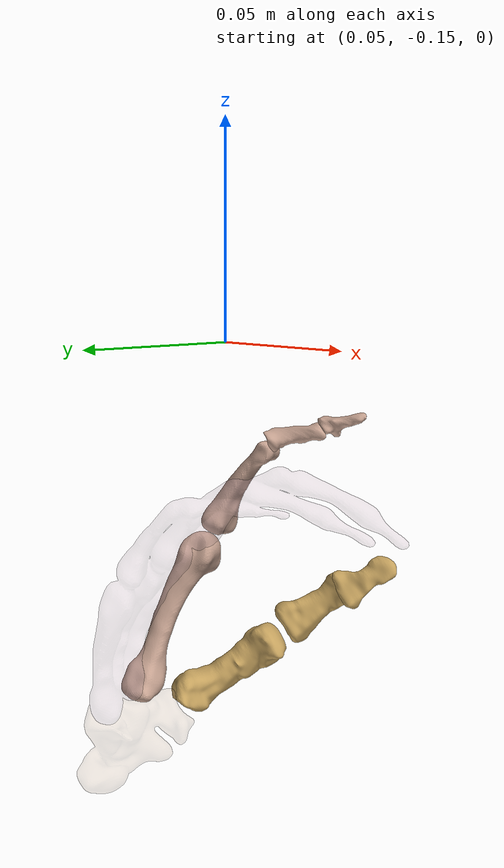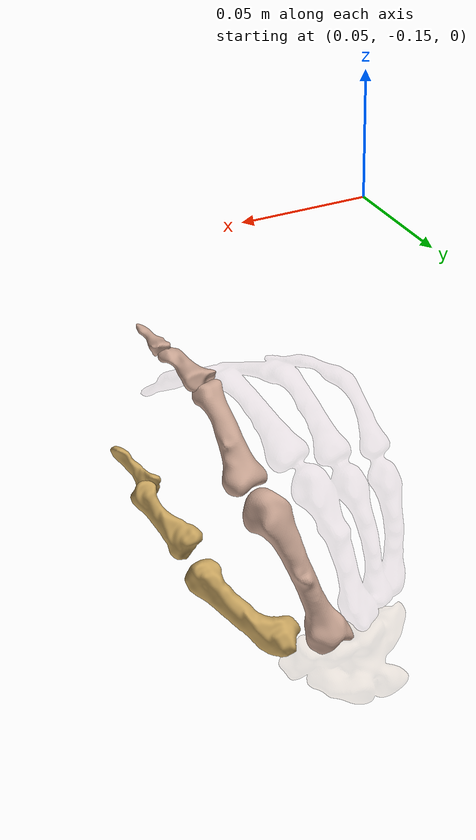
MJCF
<mujoco model="hand model">
    <visual>
        <headlight diffuse="0.6 0.6 0.6" ambient="0.3 0.3 0.3" specular="0 0 0" />
        <rgba haze="0.15 0.25 0.35 1" />
        <map znear="0.01" />
        <global offwidth="1024" offheight="1024" />
    </visual>
    <asset>
        <texture type="skybox" builtin="gradient" rgb1="1 1 1" rgb2="1 1 1" width="512" height="3072" />
        <texture type="2d" name="groundplane" builtin="checker" mark="edge" rgb1="0.2 0.3 0.4" rgb2="0.1 0.2 0.3" markrgb="0.8 0.8 0.8" width="300" height="300" />
        <material name="groundplane" texture="groundplane" texuniform="true" texrepeat="10 10" reflectance="0.3" />
        <material name="bone" reflectance="1" shininess="0" specular="0" rgba="0.68 0.64 0.57 1" />
    </asset>
    <default>
        <default class="zf">
            <geom type="mesh" contype="3" conaffinity="2" group="0" friction="0.7" solref="0.015 1" solimp="0.95 0.99 0.003" rgba="0.78 0.64 0.57 0.9" />
        </default>
        <default class="dau">
            <geom type="mesh" contype="3" conaffinity="2" group="0" friction="0.7" solref="0.015 1" solimp="0.95 0.99 0.003" rgba="0.78 0.64 0.37 0.9" />
        </default>
        <default class="base">
            <geom type="mesh" contype="3" conaffinity="2" group="0" friction="0.7" solref="0.015 1" solimp="0.95 0.99 0.003" rgba="0.74 0.60 0.47 0.1" />
        </default>
        <default class="other">
            <geom type="mesh" contype="3" conaffinity="2" group="0" friction="0.7" solref="0.015 1" solimp="0.95 0.99 0.003" rgba="0.74 0.60 0.67 0.1" />
        </default>
        <default class="visual">
            <geom type="mesh" contype="0" conaffinity="0" group="2" material="bone" rgba="0.68 0.64 0.57 1.0" />
        </default>
        <default class="tracker">
            <geom type="mesh" contype="0" conaffinity="0" group="2" rgba="0.2 0.2 1 0.2" />
        </default>
    </default>

    <compiler angle="radian" meshdir="../../assets/meshes" texturedir="assets" />
    <option integrator="RK4" />

    <statistic center="-0.4 -0.4 0.2" extent="1.2" />

    <asset>
        <mesh file="Segmentation_ZF_DIP.stl" name="ZF-DIP" scale="0.001 0.001 0.001" />
        <mesh file="Segmentation_ZF_PIP.stl" name="ZF-PIP1" scale="0.001 0.001 0.001" />
        <mesh file="zf_mid2.stl" name="ZF-PIP2" scale="0.001 0.001 0.001" />
        <mesh file="zf_mcp.stl" name="ZF-MCP" scale="0.001 0.001 0.001" />
        <mesh file="Segmentation_DAU_Osmetacarpale_1.stl" name="DAU-MCP" scale="0.001 0.001 0.001" />
        <mesh file="Segmentation_DAU_Phalax_proximalis.stl" name="DAU-PIP" scale="0.001 0.001 0.001" />
        <mesh file="Segmentation_DAU_DIP.stl" name="DAU-DIP" scale="0.001 0.001 0.001" />
        <mesh file="backhand.stl" name="BASE" scale="0.001 0.001 0.001" />
        <mesh file="rest.stl" name="OTHER" scale="0.001 0.001 0.001" />
    </asset>

    <worldbody>

        <light pos="0 0 1.5" dir="0 0 -1" directional="true" />

        <body name="ZF_MCP" pos="0.1776774 -0.007402596 0.16383637" quat="0.94908375 0.26175642 0.15019616 -0.096228346">

            <geom class="zf" mesh="ZF-MCP" type="mesh" />
            <geom class="base" mesh="BASE" type="mesh" />
            <geom class="other" mesh="OTHER" type="mesh" />

            <body name="DAU_MCP" pos="0.0003336841 0.0020733923 0.0021159737" quat="0.99705034 -0.0019221723 0.0048085903 -0.0048973868">
                <geom class="dau" mesh="DAU-MCP" type="mesh" />

                <joint armature="0.001" axis="0.2742059 0.7937635 -0.5429093" limited="true" name="ZF_MCP_to_DAU_CMC" pos="0.30018988 -0.10676851 -0.3061455" range="-1 1" type="hinge" />
                <joint armature="0.001" axis="0.6546 -0.6559804 -0.37575072" limited="true" name="DAU_CMC_to_DAU_MCP" pos="0.09922584 -0.3020816 -0.19789205" range="-0.2 1" type="hinge" />

                <body name="DAU_PIP" pos="0.006258016 0.0052959076 -0.00051674433" quat="0.99935913 -0.00891185 0.0006945565 -0.017817944">
                    <geom class="dau" mesh="DAU-PIP" type="mesh" />

                    <joint armature="0.001" axis="0.9999738 0.0024311296 0.006819374" limited="true" name="DAU_MCP_to_DAU_PIP" pos="0.015297772 0.00092049915 -0.002962291" range="-0.2 1" type="hinge" />

                    <body name="DAU_DIP" pos="0.017012665 0.0038345633 -0.004492165" quat="0.9958929 -0.0010636775 0.01020363 -0.040629536">
                        <geom class="dau" mesh="DAU-DIP" type="mesh" />

                        <joint armature="0.001" axis="0.9999538 -0.008915531 0.0035955422" limited="true" name="DAU_PIP_to_DAU_DIP" pos="0.020871907 -0.0027645559 0.00020505536" range="-0.2 1" type="hinge" />
                        <body name="DAU_TIP" pos="-0.0022919488 0.0021974177 -0.001919363" quat="0.9988924 -0.0027410362 -0.0015700125 -0.0046329987" />
                    </body>
                </body>
            </body>

            <body name="ZF_PIP2" pos="-0.054679856 0.04752336 -0.119985886" quat="0.95702666 -0.22162813 -0.19403175 0.032083143">
                <geom class="zf" mesh="ZF-PIP2" type="mesh" />

                <joint armature="0.001" axis="0.99999326 -0.00015349069 0.003675286" limited="true" name="ZF_MCP_to_ZF_PIP2" pos="-0.0066043953 0.0007813611 -0.0005422604" range="-0.4 1" type="hinge" />

                <body name="ZF_PIP1" pos="0.0038876198 -0.02574792 0.039141763" quat="0.9988716 0.09147741 0.0335273 0.018810697">
                    <geom class="zf" mesh="ZF-PIP1" type="mesh" />

                    <joint armature="0.001" axis="0.9999996 0.000444838 0.00082077173" limited="true" name="ZF_PIP2_to_ZF_PIP1" pos="0.032792125 0.0028194613 -0.0071567814" range="-0.4 1" type="hinge" />

                    <body name="ZF_DIP" pos="-0.007816592 -0.01059114 0.018520506" quat="1.0035625 0.044750743 -0.0014234553 0.019875223">
                        <geom class="zf" mesh="ZF-DIP" type="mesh" />

                        <joint armature="0.001" axis="0.99991775 0.009533802 -0.0085794125" limited="true" name="ZF_PIP1_to_ZF_DIP" pos="-0.008883703 -0.0013000638 -0.0055032666" range="-0.4 1" type="hinge" />

                        <body name="ZF_TIP" pos="0.004804371 0.0044412194 -7.857382e-05" quat="1.0016588 -0.004690258 -0.0015940046 0.0024381964" />
                    </body>
                </body>
            </body>
        </body>

        <camera name="camera0" pos="1.310 0.211 -0.200" xyaxes="-0.256 0.967 0.000 0.111 0.029 0.993" />

    </worldbody>
</mujoco>
